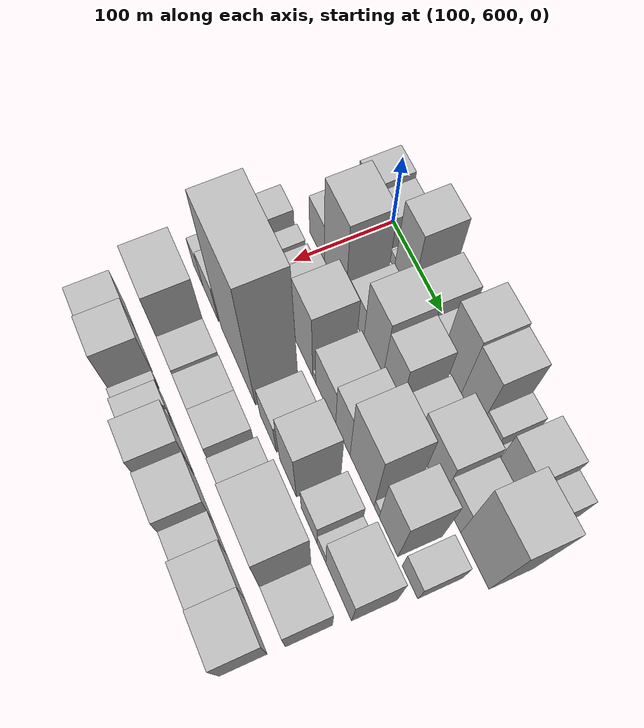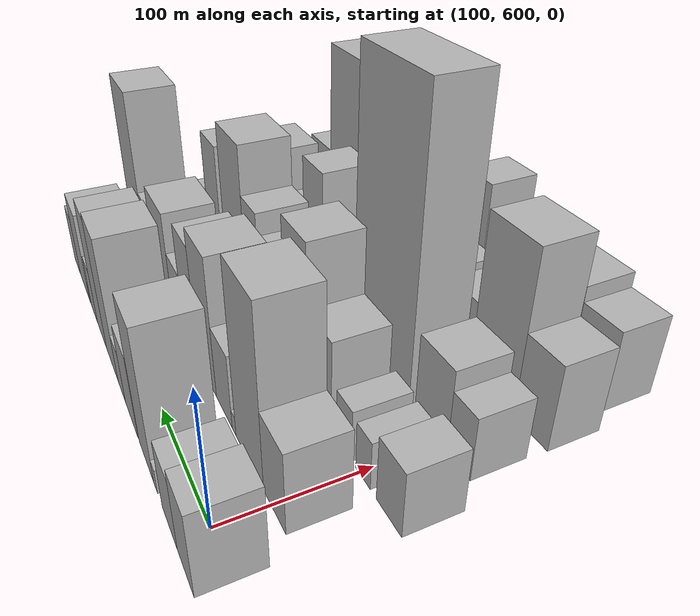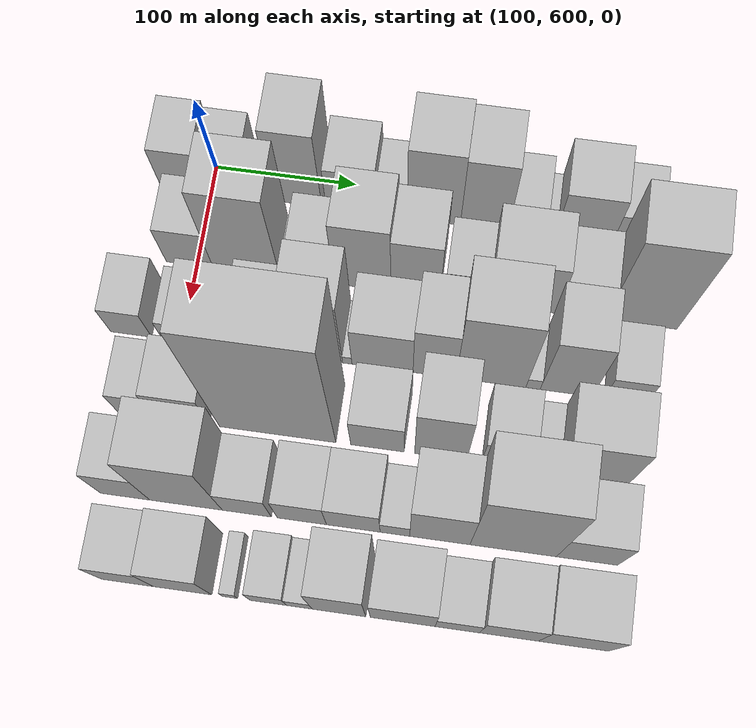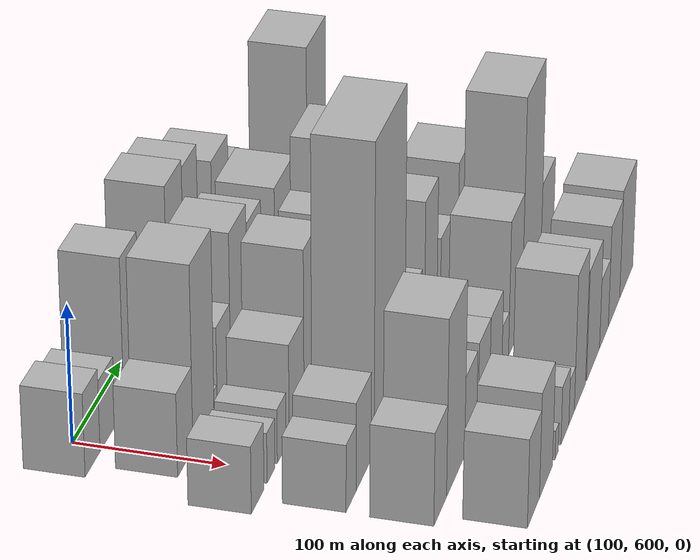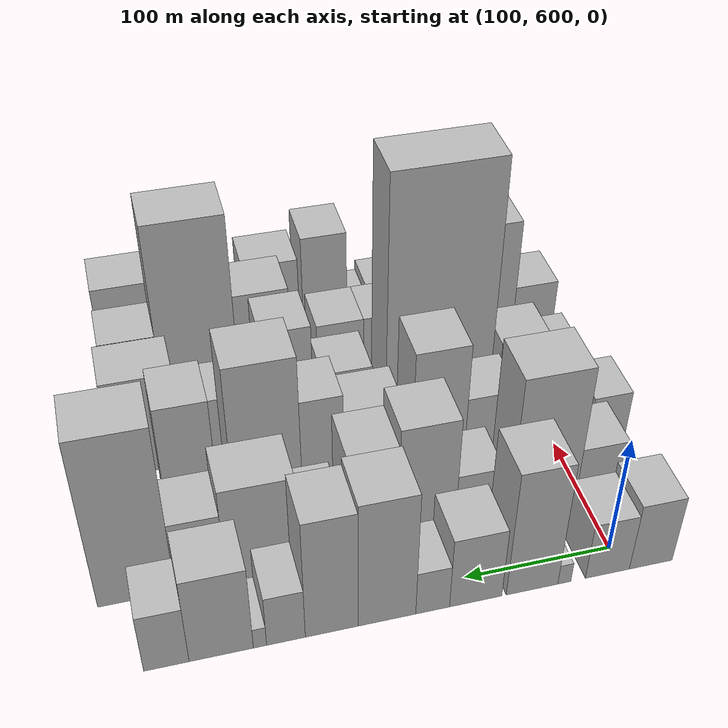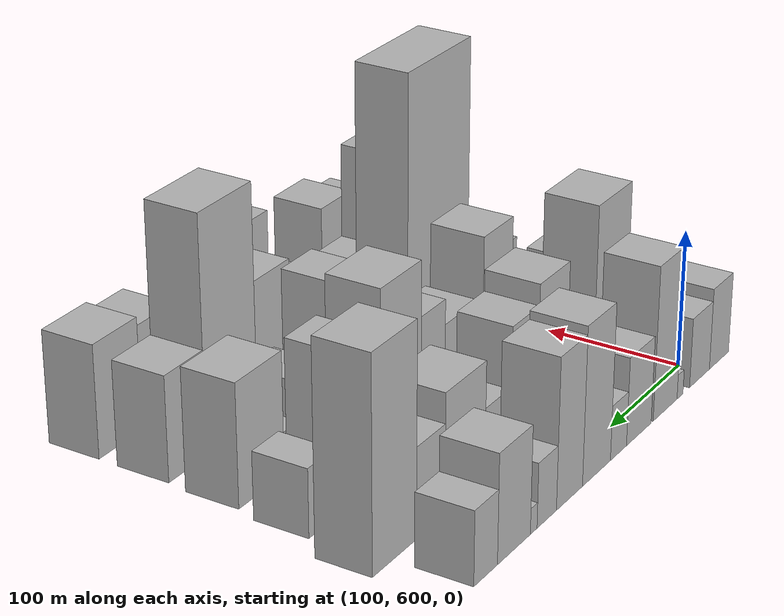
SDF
<sdf version="1.6">
 <world name="default">
  <model name="building_40">
   <static>1</static>
   <pose>100.0000 579.1528 0 0.000000 0.000000 0.000000</pose>
   <link name="link">
    <pose>0 0 30.00 0 0 0</pose>
    <collision name="collision"><geometry><box><size>40.0000 30.2417 60.0000</size></box></geometry></collision>
    <visual name="visual">
     <cast_shadows>0</cast_shadows>
     <geometry><box><size>40.0000 30.2417 60.0000</size></box></geometry>
     <material>
      <script>
       <uri>model://HANNAS_wall/materials/scripts</uri>
       <uri>model://HANNAS_wall/materials/textures</uri>
       <name>vrc/HANNAS_wall</name>
      </script>
     </material>
    </visual>
   </link>
  </model>
  <model name="building_41">
   <static>1</static>
   <pose>100.0000 609.5733 0 0.000000 0.000000 0.000000</pose>
   <link name="link">
    <pose>0 0 25.50 0 0 0</pose>
    <collision name="collision"><geometry><box><size>40.0000 30.5992 51.0000</size></box></geometry></collision>
    <visual name="visual">
     <cast_shadows>0</cast_shadows>
     <geometry><box><size>40.0000 30.5992 51.0000</size></box></geometry>
     <material>
      <script>
       <uri>model://HANNAS_wall/materials/scripts</uri>
       <uri>model://HANNAS_wall/materials/textures</uri>
       <name>vrc/HANNAS_wall</name>
      </script>
     </material>
    </visual>
   </link>
  </model>
  <model name="building_42">
   <static>1</static>
   <pose>100.0000 639.3456 0 0.000000 0.000000 0.000000</pose>
   <link name="link">
    <pose>0 0 9.00 0 0 0</pose>
    <collision name="collision"><geometry><box><size>40.0000 8.9454 18.0000</size></box></geometry></collision>
    <visual name="visual">
     <cast_shadows>0</cast_shadows>
     <geometry><box><size>40.0000 8.9454 18.0000</size></box></geometry>
     <material>
      <script>
       <uri>model://HANNAS_wall/materials/scripts</uri>
       <uri>model://HANNAS_wall/materials/textures</uri>
       <name>vrc/HANNAS_wall</name>
      </script>
     </material>
    </visual>
   </link>
  </model>
  <model name="building_43">
   <static>1</static>
   <pose>100.0000 661.3538 0 0.000000 0.000000 0.000000</pose>
   <link name="link">
    <pose>0 0 55.50 0 0 0</pose>
    <collision name="collision"><geometry><box><size>40.0000 35.0709 111.0000</size></box></geometry></collision>
    <visual name="visual">
     <cast_shadows>0</cast_shadows>
     <geometry><box><size>40.0000 35.0709 111.0000</size></box></geometry>
     <material>
      <script>
       <uri>model://HANNAS_wall/materials/scripts</uri>
       <uri>model://HANNAS_wall/materials/textures</uri>
       <name>vrc/HANNAS_wall</name>
      </script>
     </material>
    </visual>
   </link>
  </model>
  <model name="building_44">
   <static>1</static>
   <pose>100.0000 699.3466 0 0.000000 0.000000 0.000000</pose>
   <link name="link">
    <pose>0 0 31.50 0 0 0</pose>
    <collision name="collision"><geometry><box><size>40.0000 34.9148 63.0000</size></box></geometry></collision>
    <visual name="visual">
     <cast_shadows>0</cast_shadows>
     <geometry><box><size>40.0000 34.9148 63.0000</size></box></geometry>
     <material>
      <script>
       <uri>model://HANNAS_wall/materials/scripts</uri>
       <uri>model://HANNAS_wall/materials/textures</uri>
       <name>vrc/HANNAS_wall</name>
      </script>
     </material>
    </visual>
   </link>
  </model>
  <model name="building_45">
   <static>1</static>
   <pose>100.0000 727.9116 0 0.000000 0.000000 0.000000</pose>
   <link name="link">
    <pose>0 0 19.50 0 0 0</pose>
    <collision name="collision"><geometry><box><size>40.0000 22.2151 39.0000</size></box></geometry></collision>
    <visual name="visual">
     <cast_shadows>0</cast_shadows>
     <geometry><box><size>40.0000 22.2151 39.0000</size></box></geometry>
     <material>
      <script>
       <uri>model://HANNAS_wall/materials/scripts</uri>
       <uri>model://HANNAS_wall/materials/textures</uri>
       <name>vrc/HANNAS_wall</name>
      </script>
     </material>
    </visual>
   </link>
  </model>
  <model name="building_46">
   <static>1</static>
   <pose>100.0000 757.7338 0 0.000000 0.000000 0.000000</pose>
   <link name="link">
    <pose>0 0 55.50 0 0 0</pose>
    <collision name="collision"><geometry><box><size>40.0000 37.4294 111.0000</size></box></geometry></collision>
    <visual name="visual">
     <cast_shadows>0</cast_shadows>
     <geometry><box><size>40.0000 37.4294 111.0000</size></box></geometry>
     <material>
      <script>
       <uri>model://HANNAS_wall/materials/scripts</uri>
       <uri>model://HANNAS_wall/materials/textures</uri>
       <name>vrc/HANNAS_wall</name>
      </script>
     </material>
    </visual>
   </link>
  </model>
  <model name="building_47">
   <static>1</static>
   <pose>100.0000 793.2924 0 0.000000 0.000000 0.000000</pose>
   <link name="link">
    <pose>0 0 52.50 0 0 0</pose>
    <collision name="collision"><geometry><box><size>40.0000 33.6877 105.0000</size></box></geometry></collision>
    <visual name="visual">
     <cast_shadows>0</cast_shadows>
     <geometry><box><size>40.0000 33.6877 105.0000</size></box></geometry>
     <material>
      <script>
       <uri>model://HANNAS_wall/materials/scripts</uri>
       <uri>model://HANNAS_wall/materials/textures</uri>
       <name>vrc/HANNAS_wall</name>
      </script>
     </material>
    </visual>
   </link>
  </model>
  <model name="building_48">
   <static>1</static>
   <pose>100.0000 822.3239 0 0.000000 0.000000 0.000000</pose>
   <link name="link">
    <pose>0 0 22.50 0 0 0</pose>
    <collision name="collision"><geometry><box><size>40.0000 24.3753 45.0000</size></box></geometry></collision>
    <visual name="visual">
     <cast_shadows>0</cast_shadows>
     <geometry><box><size>40.0000 24.3753 45.0000</size></box></geometry>
     <material>
      <script>
       <uri>model://HANNAS_wall/materials/scripts</uri>
       <uri>model://HANNAS_wall/materials/textures</uri>
       <name>vrc/HANNAS_wall</name>
      </script>
     </material>
    </visual>
   </link>
  </model>
  <model name="building_49">
   <static>1</static>
   <pose>100.0000 838.6322 0 0.000000 0.000000 0.000000</pose>
   <link name="link">
    <pose>0 0 9.00 0 0 0</pose>
    <collision name="collision"><geometry><box><size>40.0000 8.2412 18.0000</size></box></geometry></collision>
    <visual name="visual">
     <cast_shadows>0</cast_shadows>
     <geometry><box><size>40.0000 8.2412 18.0000</size></box></geometry>
     <material>
      <script>
       <uri>model://HANNAS_wall/materials/scripts</uri>
       <uri>model://HANNAS_wall/materials/textures</uri>
       <name>vrc/HANNAS_wall</name>
      </script>
     </material>
    </visual>
   </link>
  </model>
  <model name="building_50">
   <static>1</static>
   <pose>100.0000 862.5856 0 0.000000 0.000000 0.000000</pose>
   <link name="link">
    <pose>0 0 37.50 0 0 0</pose>
    <collision name="collision"><geometry><box><size>40.0000 39.6657 75.0000</size></box></geometry></collision>
    <visual name="visual">
     <cast_shadows>0</cast_shadows>
     <geometry><box><size>40.0000 39.6657 75.0000</size></box></geometry>
     <material>
      <script>
       <uri>model://HANNAS_wall/materials/scripts</uri>
       <uri>model://HANNAS_wall/materials/textures</uri>
       <name>vrc/HANNAS_wall</name>
      </script>
     </material>
    </visual>
   </link>
  </model>
  <model name="building_51">
   <static>1</static>
   <pose>100.0000 896.2049 0 0.000000 0.000000 0.000000</pose>
   <link name="link">
    <pose>0 0 25.50 0 0 0</pose>
    <collision name="collision"><geometry><box><size>40.0000 27.5730 51.0000</size></box></geometry></collision>
    <visual name="visual">
     <cast_shadows>0</cast_shadows>
     <geometry><box><size>40.0000 27.5730 51.0000</size></box></geometry>
     <material>
      <script>
       <uri>model://HANNAS_wall/materials/scripts</uri>
       <uri>model://HANNAS_wall/materials/textures</uri>
       <name>vrc/HANNAS_wall</name>
      </script>
     </material>
    </visual>
   </link>
  </model>
  <model name="building_92">
   <static>1</static>
   <pose>155.0000 594.9824 0 0.000000 0.000000 0.000000</pose>
   <link name="link">
    <pose>0 0 30.00 0 0 0</pose>
    <collision name="collision"><geometry><box><size>40.0000 32.9326 60.0000</size></box></geometry></collision>
    <visual name="visual">
     <cast_shadows>0</cast_shadows>
     <geometry><box><size>40.0000 32.9326 60.0000</size></box></geometry>
     <material>
      <script>
       <uri>model://HANNAS_wall/materials/scripts</uri>
       <uri>model://HANNAS_wall/materials/textures</uri>
       <name>vrc/HANNAS_wall</name>
      </script>
     </material>
    </visual>
   </link>
  </model>
  <model name="building_93">
   <static>1</static>
   <pose>155.0000 634.8041 0 0.000000 0.000000 0.000000</pose>
   <link name="link">
    <pose>0 0 66.00 0 0 0</pose>
    <collision name="collision"><geometry><box><size>40.0000 46.7108 132.0000</size></box></geometry></collision>
    <visual name="visual">
     <cast_shadows>0</cast_shadows>
     <geometry><box><size>40.0000 46.7108 132.0000</size></box></geometry>
     <material>
      <script>
       <uri>model://HANNAS_wall/materials/scripts</uri>
       <uri>model://HANNAS_wall/materials/textures</uri>
       <name>vrc/HANNAS_wall</name>
      </script>
     </material>
    </visual>
   </link>
  </model>
  <model name="building_94">
   <static>1</static>
   <pose>155.0000 661.6683 0 0.000000 0.000000 0.000000</pose>
   <link name="link">
    <pose>0 0 7.50 0 0 0</pose>
    <collision name="collision"><geometry><box><size>40.0000 7.0175 15.0000</size></box></geometry></collision>
    <visual name="visual">
     <cast_shadows>0</cast_shadows>
     <geometry><box><size>40.0000 7.0175 15.0000</size></box></geometry>
     <material>
      <script>
       <uri>model://HANNAS_wall/materials/scripts</uri>
       <uri>model://HANNAS_wall/materials/textures</uri>
       <name>vrc/HANNAS_wall</name>
      </script>
     </material>
    </visual>
   </link>
  </model>
  <model name="building_95">
   <static>1</static>
   <pose>155.0000 680.6765 0 0.000000 0.000000 0.000000</pose>
   <link name="link">
    <pose>0 0 28.50 0 0 0</pose>
    <collision name="collision"><geometry><box><size>40.0000 30.9990 57.0000</size></box></geometry></collision>
    <visual name="visual">
     <cast_shadows>0</cast_shadows>
     <geometry><box><size>40.0000 30.9990 57.0000</size></box></geometry>
     <material>
      <script>
       <uri>model://HANNAS_wall/materials/scripts</uri>
       <uri>model://HANNAS_wall/materials/textures</uri>
       <name>vrc/HANNAS_wall</name>
      </script>
     </material>
    </visual>
   </link>
  </model>
  <model name="building_96">
   <static>1</static>
   <pose>155.0000 715.7891 0 0.000000 0.000000 0.000000</pose>
   <link name="link">
    <pose>0 0 54.00 0 0 0</pose>
    <collision name="collision"><geometry><box><size>40.0000 39.2261 108.0000</size></box></geometry></collision>
    <visual name="visual">
     <cast_shadows>0</cast_shadows>
     <geometry><box><size>40.0000 39.2261 108.0000</size></box></geometry>
     <material>
      <script>
       <uri>model://HANNAS_wall/materials/scripts</uri>
       <uri>model://HANNAS_wall/materials/textures</uri>
       <name>vrc/HANNAS_wall</name>
      </script>
     </material>
    </visual>
   </link>
  </model>
  <model name="building_97">
   <static>1</static>
   <pose>155.0000 752.4125 0 0.000000 0.000000 0.000000</pose>
   <link name="link">
    <pose>0 0 46.50 0 0 0</pose>
    <collision name="collision"><geometry><box><size>40.0000 34.0209 93.0000</size></box></geometry></collision>
    <visual name="visual">
     <cast_shadows>0</cast_shadows>
     <geometry><box><size>40.0000 34.0209 93.0000</size></box></geometry>
     <material>
      <script>
       <uri>model://HANNAS_wall/materials/scripts</uri>
       <uri>model://HANNAS_wall/materials/textures</uri>
       <name>vrc/HANNAS_wall</name>
      </script>
     </material>
    </visual>
   </link>
  </model>
  <model name="building_98">
   <static>1</static>
   <pose>155.0000 787.1122 0 0.000000 0.000000 0.000000</pose>
   <link name="link">
    <pose>0 0 25.50 0 0 0</pose>
    <collision name="collision"><geometry><box><size>40.0000 29.3783 51.0000</size></box></geometry></collision>
    <visual name="visual">
     <cast_shadows>0</cast_shadows>
     <geometry><box><size>40.0000 29.3783 51.0000</size></box></geometry>
     <material>
      <script>
       <uri>model://HANNAS_wall/materials/scripts</uri>
       <uri>model://HANNAS_wall/materials/textures</uri>
       <name>vrc/HANNAS_wall</name>
      </script>
     </material>
    </visual>
   </link>
  </model>
  <model name="building_99">
   <static>1</static>
   <pose>155.0000 825.9825 0 0.000000 0.000000 0.000000</pose>
   <link name="link">
    <pose>0 0 42.00 0 0 0</pose>
    <collision name="collision"><geometry><box><size>40.0000 48.3623 84.0000</size></box></geometry></collision>
    <visual name="visual">
     <cast_shadows>0</cast_shadows>
     <geometry><box><size>40.0000 48.3623 84.0000</size></box></geometry>
     <material>
      <script>
       <uri>model://HANNAS_wall/materials/scripts</uri>
       <uri>model://HANNAS_wall/materials/textures</uri>
       <name>vrc/HANNAS_wall</name>
      </script>
     </material>
    </visual>
   </link>
  </model>
  <model name="building_100">
   <static>1</static>
   <pose>155.0000 866.5568 0 0.000000 0.000000 0.000000</pose>
   <link name="link">
    <pose>0 0 31.50 0 0 0</pose>
    <collision name="collision"><geometry><box><size>40.0000 32.7864 63.0000</size></box></geometry></collision>
    <visual name="visual">
     <cast_shadows>0</cast_shadows>
     <geometry><box><size>40.0000 32.7864 63.0000</size></box></geometry>
     <material>
      <script>
       <uri>model://HANNAS_wall/materials/scripts</uri>
       <uri>model://HANNAS_wall/materials/textures</uri>
       <name>vrc/HANNAS_wall</name>
      </script>
     </material>
    </visual>
   </link>
  </model>
  <model name="building_101">
   <static>1</static>
   <pose>155.0000 907.6513 0 0.000000 0.000000 0.000000</pose>
   <link name="link">
    <pose>0 0 73.50 0 0 0</pose>
    <collision name="collision"><geometry><box><size>40.0000 49.4026 147.0000</size></box></geometry></collision>
    <visual name="visual">
     <cast_shadows>0</cast_shadows>
     <geometry><box><size>40.0000 49.4026 147.0000</size></box></geometry>
     <material>
      <script>
       <uri>model://HANNAS_wall/materials/scripts</uri>
       <uri>model://HANNAS_wall/materials/textures</uri>
       <name>vrc/HANNAS_wall</name>
      </script>
     </material>
    </visual>
   </link>
  </model>
  <model name="building_142">
   <static>1</static>
   <pose>210.0000 564.6591 0 0.000000 0.000000 0.000000</pose>
   <link name="link">
    <pose>0 0 24.00 0 0 0</pose>
    <collision name="collision"><geometry><box><size>40.0000 28.4304 48.0000</size></box></geometry></collision>
    <visual name="visual">
     <cast_shadows>0</cast_shadows>
     <geometry><box><size>40.0000 28.4304 48.0000</size></box></geometry>
     <material>
      <script>
       <uri>model://HANNAS_wall/materials/scripts</uri>
       <uri>model://HANNAS_wall/materials/textures</uri>
       <name>vrc/HANNAS_wall</name>
      </script>
     </material>
    </visual>
   </link>
  </model>
  <model name="building_143">
   <static>1</static>
   <pose>210.0000 594.9779 0 0.000000 0.000000 0.000000</pose>
   <link name="link">
    <pose>0 0 18.00 0 0 0</pose>
    <collision name="collision"><geometry><box><size>40.0000 18.2071 36.0000</size></box></geometry></collision>
    <visual name="visual">
     <cast_shadows>0</cast_shadows>
     <geometry><box><size>40.0000 18.2071 36.0000</size></box></geometry>
     <material>
      <script>
       <uri>model://HANNAS_wall/materials/scripts</uri>
       <uri>model://HANNAS_wall/materials/textures</uri>
       <name>vrc/HANNAS_wall</name>
      </script>
     </material>
    </visual>
   </link>
  </model>
  <model name="building_144">
   <static>1</static>
   <pose>210.0000 619.4862 0 0.000000 0.000000 0.000000</pose>
   <link name="link">
    <pose>0 0 19.50 0 0 0</pose>
    <collision name="collision"><geometry><box><size>40.0000 20.8095 39.0000</size></box></geometry></collision>
    <visual name="visual">
     <cast_shadows>0</cast_shadows>
     <geometry><box><size>40.0000 20.8095 39.0000</size></box></geometry>
     <material>
      <script>
       <uri>model://HANNAS_wall/materials/scripts</uri>
       <uri>model://HANNAS_wall/materials/textures</uri>
       <name>vrc/HANNAS_wall</name>
      </script>
     </material>
    </visual>
   </link>
  </model>
  <model name="building_145">
   <static>1</static>
   <pose>210.0000 654.6180 0 0.000000 0.000000 0.000000</pose>
   <link name="link">
    <pose>0 0 34.50 0 0 0</pose>
    <collision name="collision"><geometry><box><size>40.0000 35.4540 69.0000</size></box></geometry></collision>
    <visual name="visual">
     <cast_shadows>0</cast_shadows>
     <geometry><box><size>40.0000 35.4540 69.0000</size></box></geometry>
     <material>
      <script>
       <uri>model://HANNAS_wall/materials/scripts</uri>
       <uri>model://HANNAS_wall/materials/textures</uri>
       <name>vrc/HANNAS_wall</name>
      </script>
     </material>
    </visual>
   </link>
  </model>
  <model name="building_146">
   <static>1</static>
   <pose>210.0000 691.2730 0 0.000000 0.000000 0.000000</pose>
   <link name="link">
    <pose>0 0 58.50 0 0 0</pose>
    <collision name="collision"><geometry><box><size>40.0000 37.8559 117.0000</size></box></geometry></collision>
    <visual name="visual">
     <cast_shadows>0</cast_shadows>
     <geometry><box><size>40.0000 37.8559 117.0000</size></box></geometry>
     <material>
      <script>
       <uri>model://HANNAS_wall/materials/scripts</uri>
       <uri>model://HANNAS_wall/materials/textures</uri>
       <name>vrc/HANNAS_wall</name>
      </script>
     </material>
    </visual>
   </link>
  </model>
  <model name="building_147">
   <static>1</static>
   <pose>210.0000 713.3845 0 0.000000 0.000000 0.000000</pose>
   <link name="link">
    <pose>0 0 7.50 0 0 0</pose>
    <collision name="collision"><geometry><box><size>40.0000 6.3672 15.0000</size></box></geometry></collision>
    <visual name="visual">
     <cast_shadows>0</cast_shadows>
     <geometry><box><size>40.0000 6.3672 15.0000</size></box></geometry>
     <material>
      <script>
       <uri>model://HANNAS_wall/materials/scripts</uri>
       <uri>model://HANNAS_wall/materials/textures</uri>
       <name>vrc/HANNAS_wall</name>
      </script>
     </material>
    </visual>
   </link>
  </model>
  <model name="building_148">
   <static>1</static>
   <pose>210.0000 737.3814 0 0.000000 0.000000 0.000000</pose>
   <link name="link">
    <pose>0 0 37.50 0 0 0</pose>
    <collision name="collision"><geometry><box><size>40.0000 41.6265 75.0000</size></box></geometry></collision>
    <visual name="visual">
     <cast_shadows>0</cast_shadows>
     <geometry><box><size>40.0000 41.6265 75.0000</size></box></geometry>
     <material>
      <script>
       <uri>model://HANNAS_wall/materials/scripts</uri>
       <uri>model://HANNAS_wall/materials/textures</uri>
       <name>vrc/HANNAS_wall</name>
      </script>
     </material>
    </visual>
   </link>
  </model>
  <model name="building_149">
   <static>1</static>
   <pose>210.0000 772.7951 0 0.000000 0.000000 0.000000</pose>
   <link name="link">
    <pose>0 0 46.50 0 0 0</pose>
    <collision name="collision"><geometry><box><size>40.0000 29.2011 93.0000</size></box></geometry></collision>
    <visual name="visual">
     <cast_shadows>0</cast_shadows>
     <geometry><box><size>40.0000 29.2011 93.0000</size></box></geometry>
     <material>
      <script>
       <uri>model://HANNAS_wall/materials/scripts</uri>
       <uri>model://HANNAS_wall/materials/textures</uri>
       <name>vrc/HANNAS_wall</name>
      </script>
     </material>
    </visual>
   </link>
  </model>
  <model name="building_150">
   <static>1</static>
   <pose>210.0000 811.1156 0 0.000000 0.000000 0.000000</pose>
   <link name="link">
    <pose>0 0 66.00 0 0 0</pose>
    <collision name="collision"><geometry><box><size>40.0000 47.4399 132.0000</size></box></geometry></collision>
    <visual name="visual">
     <cast_shadows>0</cast_shadows>
     <geometry><box><size>40.0000 47.4399 132.0000</size></box></geometry>
     <material>
      <script>
       <uri>model://HANNAS_wall/materials/scripts</uri>
       <uri>model://HANNAS_wall/materials/textures</uri>
       <name>vrc/HANNAS_wall</name>
      </script>
     </material>
    </visual>
   </link>
  </model>
  <model name="building_151">
   <static>1</static>
   <pose>210.0000 839.6683 0 0.000000 0.000000 0.000000</pose>
   <link name="link">
    <pose>0 0 10.50 0 0 0</pose>
    <collision name="collision"><geometry><box><size>40.0000 9.6655 21.0000</size></box></geometry></collision>
    <visual name="visual">
     <cast_shadows>0</cast_shadows>
     <geometry><box><size>40.0000 9.6655 21.0000</size></box></geometry>
     <material>
      <script>
       <uri>model://HANNAS_wall/materials/scripts</uri>
       <uri>model://HANNAS_wall/materials/textures</uri>
       <name>vrc/HANNAS_wall</name>
      </script>
     </material>
    </visual>
   </link>
  </model>
  <model name="building_152">
   <static>1</static>
   <pose>210.0000 862.0344 0 0.000000 0.000000 0.000000</pose>
   <link name="link">
    <pose>0 0 54.00 0 0 0</pose>
    <collision name="collision"><geometry><box><size>40.0000 35.0665 108.0000</size></box></geometry></collision>
    <visual name="visual">
     <cast_shadows>0</cast_shadows>
     <geometry><box><size>40.0000 35.0665 108.0000</size></box></geometry>
     <material>
      <script>
       <uri>model://HANNAS_wall/materials/scripts</uri>
       <uri>model://HANNAS_wall/materials/textures</uri>
       <name>vrc/HANNAS_wall</name>
      </script>
     </material>
    </visual>
   </link>
  </model>
  <model name="building_153">
   <static>1</static>
   <pose>210.0000 901.7839 0 0.000000 0.000000 0.000000</pose>
   <link name="link">
    <pose>0 0 24.00 0 0 0</pose>
    <collision name="collision"><geometry><box><size>40.0000 28.4325 48.0000</size></box></geometry></collision>
    <visual name="visual">
     <cast_shadows>0</cast_shadows>
     <geometry><box><size>40.0000 28.4325 48.0000</size></box></geometry>
     <material>
      <script>
       <uri>model://HANNAS_wall/materials/scripts</uri>
       <uri>model://HANNAS_wall/materials/textures</uri>
       <name>vrc/HANNAS_wall</name>
      </script>
     </material>
    </visual>
   </link>
  </model>
  <model name="building_193">
   <static>1</static>
   <pose>265.0000 578.9306 0 0.000000 0.000000 0.000000</pose>
   <link name="link">
    <pose>0 0 24.00 0 0 0</pose>
    <collision name="collision"><geometry><box><size>40.0000 24.2557 48.0000</size></box></geometry></collision>
    <visual name="visual">
     <cast_shadows>0</cast_shadows>
     <geometry><box><size>40.0000 24.2557 48.0000</size></box></geometry>
     <material>
      <script>
       <uri>model://HANNAS_wall/materials/scripts</uri>
       <uri>model://HANNAS_wall/materials/textures</uri>
       <name>vrc/HANNAS_wall</name>
      </script>
     </material>
    </visual>
   </link>
  </model>
  <model name="building_194">
   <static>1</static>
   <pose>265.0000 609.7738 0 0.000000 0.000000 0.000000</pose>
   <link name="link">
    <pose>0 0 31.50 0 0 0</pose>
    <collision name="collision"><geometry><box><size>40.0000 37.4307 63.0000</size></box></geometry></collision>
    <visual name="visual">
     <cast_shadows>0</cast_shadows>
     <geometry><box><size>40.0000 37.4307 63.0000</size></box></geometry>
     <material>
      <script>
       <uri>model://HANNAS_wall/materials/scripts</uri>
       <uri>model://HANNAS_wall/materials/textures</uri>
       <name>vrc/HANNAS_wall</name>
      </script>
     </material>
    </visual>
   </link>
  </model>
  <model name="building_195">
   <static>1</static>
   <pose>265.0000 674.7218 0 0.000000 0.000000 0.000000</pose>
   <link name="link">
    <pose>0 0 109.50 0 0 0</pose>
    <collision name="collision"><geometry><box><size>40.0000 78.4655 219.0000</size></box></geometry></collision>
    <visual name="visual">
     <cast_shadows>0</cast_shadows>
     <geometry><box><size>40.0000 78.4655 219.0000</size></box></geometry>
     <material>
      <script>
       <uri>model://HANNAS_wall/materials/scripts</uri>
       <uri>model://HANNAS_wall/materials/textures</uri>
       <name>vrc/HANNAS_wall</name>
      </script>
     </material>
    </visual>
   </link>
  </model>
  <model name="building_196">
   <static>1</static>
   <pose>265.0000 741.8530 0 0.000000 0.000000 0.000000</pose>
   <link name="link">
    <pose>0 0 31.50 0 0 0</pose>
    <collision name="collision"><geometry><box><size>40.0000 35.7968 63.0000</size></box></geometry></collision>
    <visual name="visual">
     <cast_shadows>0</cast_shadows>
     <geometry><box><size>40.0000 35.7968 63.0000</size></box></geometry>
     <material>
      <script>
       <uri>model://HANNAS_wall/materials/scripts</uri>
       <uri>model://HANNAS_wall/materials/textures</uri>
       <name>vrc/HANNAS_wall</name>
      </script>
     </material>
    </visual>
   </link>
  </model>
  <model name="building_197">
   <static>1</static>
   <pose>265.0000 784.1682 0 0.000000 0.000000 0.000000</pose>
   <link name="link">
    <pose>0 0 54.00 0 0 0</pose>
    <collision name="collision"><geometry><box><size>40.0000 34.8337 108.0000</size></box></geometry></collision>
    <visual name="visual">
     <cast_shadows>0</cast_shadows>
     <geometry><box><size>40.0000 34.8337 108.0000</size></box></geometry>
     <material>
      <script>
       <uri>model://HANNAS_wall/materials/scripts</uri>
       <uri>model://HANNAS_wall/materials/textures</uri>
       <name>vrc/HANNAS_wall</name>
      </script>
     </material>
    </visual>
   </link>
  </model>
  <model name="building_198">
   <static>1</static>
   <pose>265.0000 827.6057 0 0.000000 0.000000 0.000000</pose>
   <link name="link">
    <pose>0 0 28.50 0 0 0</pose>
    <collision name="collision"><geometry><box><size>40.0000 32.0413 57.0000</size></box></geometry></collision>
    <visual name="visual">
     <cast_shadows>0</cast_shadows>
     <geometry><box><size>40.0000 32.0413 57.0000</size></box></geometry>
     <material>
      <script>
       <uri>model://HANNAS_wall/materials/scripts</uri>
       <uri>model://HANNAS_wall/materials/textures</uri>
       <name>vrc/HANNAS_wall</name>
      </script>
     </material>
    </visual>
   </link>
  </model>
  <model name="building_199">
   <static>1</static>
   <pose>265.0000 852.2963 0 0.000000 0.000000 0.000000</pose>
   <link name="link">
    <pose>0 0 15.00 0 0 0</pose>
    <collision name="collision"><geometry><box><size>40.0000 17.3398 30.0000</size></box></geometry></collision>
    <visual name="visual">
     <cast_shadows>0</cast_shadows>
     <geometry><box><size>40.0000 17.3398 30.0000</size></box></geometry>
     <material>
      <script>
       <uri>model://HANNAS_wall/materials/scripts</uri>
       <uri>model://HANNAS_wall/materials/textures</uri>
       <name>vrc/HANNAS_wall</name>
      </script>
     </material>
    </visual>
   </link>
  </model>
  <model name="building_200">
   <static>1</static>
   <pose>265.0000 885.5351 0 0.000000 0.000000 0.000000</pose>
   <link name="link">
    <pose>0 0 43.50 0 0 0</pose>
    <collision name="collision"><geometry><box><size>40.0000 49.1378 87.0000</size></box></geometry></collision>
    <visual name="visual">
     <cast_shadows>0</cast_shadows>
     <geometry><box><size>40.0000 49.1378 87.0000</size></box></geometry>
     <material>
      <script>
       <uri>model://HANNAS_wall/materials/scripts</uri>
       <uri>model://HANNAS_wall/materials/textures</uri>
       <name>vrc/HANNAS_wall</name>
      </script>
     </material>
    </visual>
   </link>
  </model>
  <model name="building_243">
   <static>1</static>
   <pose>320.0000 582.1600 0 0.000000 0.000000 0.000000</pose>
   <link name="link">
    <pose>0 0 33.00 0 0 0</pose>
    <collision name="collision"><geometry><box><size>40.0000 33.0058 66.0000</size></box></geometry></collision>
    <visual name="visual">
     <cast_shadows>0</cast_shadows>
     <geometry><box><size>40.0000 33.0058 66.0000</size></box></geometry>
     <material>
      <script>
       <uri>model://HANNAS_wall/materials/scripts</uri>
       <uri>model://HANNAS_wall/materials/textures</uri>
       <name>vrc/HANNAS_wall</name>
      </script>
     </material>
    </visual>
   </link>
  </model>
  <model name="building_244">
   <static>1</static>
   <pose>320.0000 622.8695 0 0.000000 0.000000 0.000000</pose>
   <link name="link">
    <pose>0 0 63.00 0 0 0</pose>
    <collision name="collision"><geometry><box><size>40.0000 48.4132 126.0000</size></box></geometry></collision>
    <visual name="visual">
     <cast_shadows>0</cast_shadows>
     <geometry><box><size>40.0000 48.4132 126.0000</size></box></geometry>
     <material>
      <script>
       <uri>model://HANNAS_wall/materials/scripts</uri>
       <uri>model://HANNAS_wall/materials/textures</uri>
       <name>vrc/HANNAS_wall</name>
      </script>
     </material>
    </visual>
   </link>
  </model>
  <model name="building_245">
   <static>1</static>
   <pose>320.0000 663.3395 0 0.000000 0.000000 0.000000</pose>
   <link name="link">
    <pose>0 0 28.50 0 0 0</pose>
    <collision name="collision"><geometry><box><size>40.0000 32.5268 57.0000</size></box></geometry></collision>
    <visual name="visual">
     <cast_shadows>0</cast_shadows>
     <geometry><box><size>40.0000 32.5268 57.0000</size></box></geometry>
     <material>
      <script>
       <uri>model://HANNAS_wall/materials/scripts</uri>
       <uri>model://HANNAS_wall/materials/textures</uri>
       <name>vrc/HANNAS_wall</name>
      </script>
     </material>
    </visual>
   </link>
  </model>
  <model name="building_246">
   <static>1</static>
   <pose>320.0000 699.8684 0 0.000000 0.000000 0.000000</pose>
   <link name="link">
    <pose>0 0 30.00 0 0 0</pose>
    <collision name="collision"><geometry><box><size>40.0000 32.5311 60.0000</size></box></geometry></collision>
    <visual name="visual">
     <cast_shadows>0</cast_shadows>
     <geometry><box><size>40.0000 32.5311 60.0000</size></box></geometry>
     <material>
      <script>
       <uri>model://HANNAS_wall/materials/scripts</uri>
       <uri>model://HANNAS_wall/materials/textures</uri>
       <name>vrc/HANNAS_wall</name>
      </script>
     </material>
    </visual>
   </link>
  </model>
  <model name="building_247">
   <static>1</static>
   <pose>320.0000 733.8208 0 0.000000 0.000000 0.000000</pose>
   <link name="link">
    <pose>0 0 30.00 0 0 0</pose>
    <collision name="collision"><geometry><box><size>40.0000 35.3736 60.0000</size></box></geometry></collision>
    <visual name="visual">
     <cast_shadows>0</cast_shadows>
     <geometry><box><size>40.0000 35.3736 60.0000</size></box></geometry>
     <material>
      <script>
       <uri>model://HANNAS_wall/materials/scripts</uri>
       <uri>model://HANNAS_wall/materials/textures</uri>
       <name>vrc/HANNAS_wall</name>
      </script>
     </material>
    </visual>
   </link>
  </model>
  <model name="building_248">
   <static>1</static>
   <pose>320.0000 761.2670 0 0.000000 0.000000 0.000000</pose>
   <link name="link">
    <pose>0 0 16.50 0 0 0</pose>
    <collision name="collision"><geometry><box><size>40.0000 19.5189 33.0000</size></box></geometry></collision>
    <visual name="visual">
     <cast_shadows>0</cast_shadows>
     <geometry><box><size>40.0000 19.5189 33.0000</size></box></geometry>
     <material>
      <script>
       <uri>model://HANNAS_wall/materials/scripts</uri>
       <uri>model://HANNAS_wall/materials/textures</uri>
       <name>vrc/HANNAS_wall</name>
      </script>
     </material>
    </visual>
   </link>
  </model>
  <model name="building_249">
   <static>1</static>
   <pose>320.0000 790.7819 0 0.000000 0.000000 0.000000</pose>
   <link name="link">
    <pose>0 0 49.50 0 0 0</pose>
    <collision name="collision"><geometry><box><size>40.0000 39.5109 99.0000</size></box></geometry></collision>
    <visual name="visual">
     <cast_shadows>0</cast_shadows>
     <geometry><box><size>40.0000 39.5109 99.0000</size></box></geometry>
     <material>
      <script>
       <uri>model://HANNAS_wall/materials/scripts</uri>
       <uri>model://HANNAS_wall/materials/textures</uri>
       <name>vrc/HANNAS_wall</name>
      </script>
     </material>
    </visual>
   </link>
  </model>
  <model name="building_250">
   <static>1</static>
   <pose>320.0000 838.8953 0 0.000000 0.000000 0.000000</pose>
   <link name="link">
    <pose>0 0 84.00 0 0 0</pose>
    <collision name="collision"><geometry><box><size>40.0000 56.7158 168.0000</size></box></geometry></collision>
    <visual name="visual">
     <cast_shadows>0</cast_shadows>
     <geometry><box><size>40.0000 56.7158 168.0000</size></box></geometry>
     <material>
      <script>
       <uri>model://HANNAS_wall/materials/scripts</uri>
       <uri>model://HANNAS_wall/materials/textures</uri>
       <name>vrc/HANNAS_wall</name>
      </script>
     </material>
    </visual>
   </link>
  </model>
  <model name="building_251">
   <static>1</static>
   <pose>320.0000 887.1605 0 0.000000 0.000000 0.000000</pose>
   <link name="link">
    <pose>0 0 37.50 0 0 0</pose>
    <collision name="collision"><geometry><box><size>40.0000 39.8145 75.0000</size></box></geometry></collision>
    <visual name="visual">
     <cast_shadows>0</cast_shadows>
     <geometry><box><size>40.0000 39.8145 75.0000</size></box></geometry>
     <material>
      <script>
       <uri>model://HANNAS_wall/materials/scripts</uri>
       <uri>model://HANNAS_wall/materials/textures</uri>
       <name>vrc/HANNAS_wall</name>
      </script>
     </material>
    </visual>
   </link>
  </model>
  <model name="building_293">
   <static>1</static>
   <pose>375.0000 594.8041 0 0.000000 0.000000 0.000000</pose>
   <link name="link">
    <pose>0 0 31.50 0 0 0</pose>
    <collision name="collision"><geometry><box><size>40.0000 34.1995 63.0000</size></box></geometry></collision>
    <visual name="visual">
     <cast_shadows>0</cast_shadows>
     <geometry><box><size>40.0000 34.1995 63.0000</size></box></geometry>
     <material>
      <script>
       <uri>model://HANNAS_wall/materials/scripts</uri>
       <uri>model://HANNAS_wall/materials/textures</uri>
       <name>vrc/HANNAS_wall</name>
      </script>
     </material>
    </visual>
   </link>
  </model>
  <model name="building_294">
   <static>1</static>
   <pose>375.0000 630.8962 0 0.000000 0.000000 0.000000</pose>
   <link name="link">
    <pose>0 0 37.50 0 0 0</pose>
    <collision name="collision"><geometry><box><size>40.0000 37.9847 75.0000</size></box></geometry></collision>
    <visual name="visual">
     <cast_shadows>0</cast_shadows>
     <geometry><box><size>40.0000 37.9847 75.0000</size></box></geometry>
     <material>
      <script>
       <uri>model://HANNAS_wall/materials/scripts</uri>
       <uri>model://HANNAS_wall/materials/textures</uri>
       <name>vrc/HANNAS_wall</name>
      </script>
     </material>
    </visual>
   </link>
  </model>
  <model name="building_295">
   <static>1</static>
   <pose>375.0000 661.8527 0 0.000000 0.000000 0.000000</pose>
   <link name="link">
    <pose>0 0 10.50 0 0 0</pose>
    <collision name="collision"><geometry><box><size>40.0000 9.9283 21.0000</size></box></geometry></collision>
    <visual name="visual">
     <cast_shadows>0</cast_shadows>
     <geometry><box><size>40.0000 9.9283 21.0000</size></box></geometry>
     <material>
      <script>
       <uri>model://HANNAS_wall/materials/scripts</uri>
       <uri>model://HANNAS_wall/materials/textures</uri>
       <name>vrc/HANNAS_wall</name>
      </script>
     </material>
    </visual>
   </link>
  </model>
  <model name="building_296">
   <static>1</static>
   <pose>375.0000 686.7717 0 0.000000 0.000000 0.000000</pose>
   <link name="link">
    <pose>0 0 21.00 0 0 0</pose>
    <collision name="collision"><geometry><box><size>40.0000 23.9096 42.0000</size></box></geometry></collision>
    <visual name="visual">
     <cast_shadows>0</cast_shadows>
     <geometry><box><size>40.0000 23.9096 42.0000</size></box></geometry>
     <material>
      <script>
       <uri>model://HANNAS_wall/materials/scripts</uri>
       <uri>model://HANNAS_wall/materials/textures</uri>
       <name>vrc/HANNAS_wall</name>
      </script>
     </material>
    </visual>
   </link>
  </model>
  <model name="building_297">
   <static>1</static>
   <pose>375.0000 707.0508 0 0.000000 0.000000 0.000000</pose>
   <link name="link">
    <pose>0 0 16.50 0 0 0</pose>
    <collision name="collision"><geometry><box><size>40.0000 16.6485 33.0000</size></box></geometry></collision>
    <visual name="visual">
     <cast_shadows>0</cast_shadows>
     <geometry><box><size>40.0000 16.6485 33.0000</size></box></geometry>
     <material>
      <script>
       <uri>model://HANNAS_wall/materials/scripts</uri>
       <uri>model://HANNAS_wall/materials/textures</uri>
       <name>vrc/HANNAS_wall</name>
      </script>
     </material>
    </visual>
   </link>
  </model>
  <model name="building_298">
   <static>1</static>
   <pose>375.0000 732.7792 0 0.000000 0.000000 0.000000</pose>
   <link name="link">
    <pose>0 0 49.50 0 0 0</pose>
    <collision name="collision"><geometry><box><size>40.0000 34.8082 99.0000</size></box></geometry></collision>
    <visual name="visual">
     <cast_shadows>0</cast_shadows>
     <geometry><box><size>40.0000 34.8082 99.0000</size></box></geometry>
     <material>
      <script>
       <uri>model://HANNAS_wall/materials/scripts</uri>
       <uri>model://HANNAS_wall/materials/textures</uri>
       <name>vrc/HANNAS_wall</name>
      </script>
     </material>
    </visual>
   </link>
  </model>
  <model name="building_299">
   <static>1</static>
   <pose>375.0000 774.0252 0 0.000000 0.000000 0.000000</pose>
   <link name="link">
    <pose>0 0 40.50 0 0 0</pose>
    <collision name="collision"><geometry><box><size>40.0000 41.6840 81.0000</size></box></geometry></collision>
    <visual name="visual">
     <cast_shadows>0</cast_shadows>
     <geometry><box><size>40.0000 41.6840 81.0000</size></box></geometry>
     <material>
      <script>
       <uri>model://HANNAS_wall/materials/scripts</uri>
       <uri>model://HANNAS_wall/materials/textures</uri>
       <name>vrc/HANNAS_wall</name>
      </script>
     </material>
    </visual>
   </link>
  </model>
  <model name="building_300">
   <static>1</static>
   <pose>375.0000 809.2204 0 0.000000 0.000000 0.000000</pose>
   <link name="link">
    <pose>0 0 25.50 0 0 0</pose>
    <collision name="collision"><geometry><box><size>40.0000 28.7064 51.0000</size></box></geometry></collision>
    <visual name="visual">
     <cast_shadows>0</cast_shadows>
     <geometry><box><size>40.0000 28.7064 51.0000</size></box></geometry>
     <material>
      <script>
       <uri>model://HANNAS_wall/materials/scripts</uri>
       <uri>model://HANNAS_wall/materials/textures</uri>
       <name>vrc/HANNAS_wall</name>
      </script>
     </material>
    </visual>
   </link>
  </model>
  <model name="building_301">
   <static>1</static>
   <pose>375.0000 842.4882 0 0.000000 0.000000 0.000000</pose>
   <link name="link">
    <pose>0 0 37.50 0 0 0</pose>
    <collision name="collision"><geometry><box><size>40.0000 37.8292 75.0000</size></box></geometry></collision>
    <visual name="visual">
     <cast_shadows>0</cast_shadows>
     <geometry><box><size>40.0000 37.8292 75.0000</size></box></geometry>
     <material>
      <script>
       <uri>model://HANNAS_wall/materials/scripts</uri>
       <uri>model://HANNAS_wall/materials/textures</uri>
       <name>vrc/HANNAS_wall</name>
      </script>
     </material>
    </visual>
   </link>
  </model>
  <model name="building_302">
   <static>1</static>
   <pose>375.0000 883.8554 0 0.000000 0.000000 0.000000</pose>
   <link name="link">
    <pose>0 0 40.50 0 0 0</pose>
    <collision name="collision"><geometry><box><size>40.0000 44.9053 81.0000</size></box></geometry></collision>
    <visual name="visual">
     <cast_shadows>0</cast_shadows>
     <geometry><box><size>40.0000 44.9053 81.0000</size></box></geometry>
     <material>
      <script>
       <uri>model://HANNAS_wall/materials/scripts</uri>
       <uri>model://HANNAS_wall/materials/textures</uri>
       <name>vrc/HANNAS_wall</name>
      </script>
     </material>
    </visual>
   </link>
  </model>
 </world>
</sdf>
